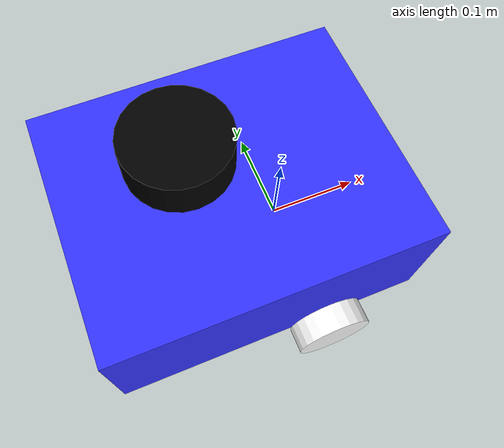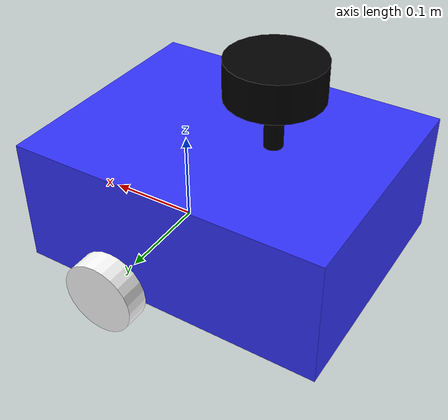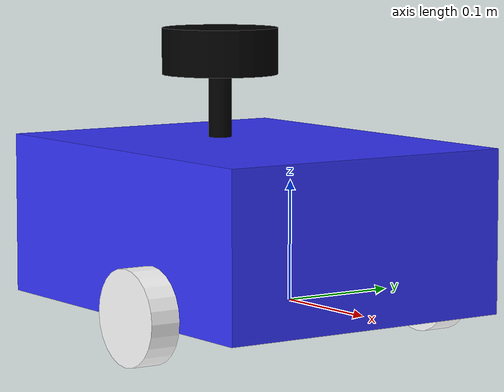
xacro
<?xml version="1.0"?>
<robot xmlns:xacro="http://www.ros.org/wiki/xacro" name="amr">
    <xacro:arg name="robot_name" default="amr_x"/>
    <xacro:arg name="use_ros2_control" default="false"/>
    <xacro:arg name="sim_mode" default="false"/>

    <xacro:include filename="robot_core.xacro" />
    <xacro:robot_core robot_name="$(arg robot_name)"/>

    <xacro:include filename="gazebo_control.xacro" />
    <xacro:gazebo_ns robot_name="$(arg robot_name)"/>

    <xacro:include filename="lidar.xacro" />

    <xacro:lidar robot_name="$(arg robot_name)"/>

</robot>

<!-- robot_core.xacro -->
<robot xmlns:xacro="http://www.ros.org/wiki/xacro" >
    <xacro:arg name="robot_name" default="amr_x"/>

    <xacro:include filename="inertial_macros.xacro"/>
    <xacro:macro name="robot_core" params="robot_name">

        <xacro:property name="chassis_length" value="0.335"/>
        <xacro:property name="chassis_width" value="0.265"/>
        <xacro:property name="chassis_height" value="0.138"/>
        <xacro:property name="chassis_mass" value="1.0"/>
        <xacro:property name="wheel_radius" value="0.040"/>
        <xacro:property name="wheel_thickness" value="0.026"/>
        <xacro:property name="wheel_mass" value="0.05"/>
        <xacro:property name="wheel_offset_x" value="0.226"/>
        <xacro:property name="wheel_offset_y" value="0.1485"/>
        <xacro:property name="wheel_offset_z" value="0.01"/>
        <xacro:property name="caster_wheel_radius" value="0.015"/>
        <xacro:property name="caster_wheel_mass" value="0.01"/>
        <xacro:property name="caster_wheel_offset_x" value="0.075"/>
        <xacro:property name="caster_wheel_offset_z" value="${wheel_offset_z - wheel_radius + caster_wheel_radius}"/>

        <material name="white">
            <color rgba="1 1 1 1" />
        </material>

        <material name="orange">
            <color rgba="1 0.3 0.1 1"/>
        </material>

        <material name="blue">
            <color rgba="0.2 0.2 1 1"/>
        </material>

        <material name="black">
            <color rgba="0 0 0 1"/>
        </material>

        <material name="red">
            <color rgba="1 0 0 1"/>
        </material>

        <!-- BASE LINK -->

        <link name="base_link">

        </link>

        <!-- BASE_FOOTPRINT LINK -->

        <joint name="base_footprint_joint" type="fixed">
            <parent link="base_link"/>
            <child link="base_footprint"/>
            <origin xyz="0 0 0" rpy="0 0 0"/>
        </joint>

        <link name="base_footprint">
        </link>

        <!-- CHASSIS LINK -->

        <joint name="chassis_joint" type="fixed">
            <parent link="base_link"/>
            <child link="chassis"/>
            <origin xyz="${-wheel_offset_x} 0 ${-wheel_offset_z}"/>
        </joint>

        <link name="chassis">
            <visual>
                <origin xyz="${chassis_length/2} 0 ${chassis_height/2}"/>
                <geometry>
                    <box size="${chassis_length} ${chassis_width} ${chassis_height}"/>
                </geometry>
                <material name="blue"/>
            </visual>
            <collision>
                <origin xyz="${chassis_length/2} 0 ${chassis_height/2}"/>
                <geometry>
                    <box size="${chassis_length} ${chassis_width} ${chassis_height}"/>
                </geometry>
            </collision>
            <xacro:inertial_box mass="0.5" x="${chassis_length}" y="${chassis_width}" z="${chassis_height}">
                <origin xyz="${chassis_length/2} 0 ${chassis_height/2}" rpy="0 0 0"/>
            </xacro:inertial_box>
        </link>

        <gazebo reference="chassis">
            <material>Gazebo/Blue</material>
        </gazebo>

        <!-- LEFT WHEEL LINK -->

        <joint name="left_wheel_joint" type="continuous">
            <parent link="base_link"/>
            <child link="left_wheel"/>
            <origin xyz="0 ${wheel_offset_y} 0" rpy="-${pi/2} 0 0" />
            <axis xyz="0 0 1"/>
        </joint>

        <link name="left_wheel">
            <visual>
                <geometry>
                    <cylinder radius="${wheel_radius}" length="${wheel_thickness}"/>
                </geometry>
                <material name="white"/>
            </visual>
            <collision>
                <geometry>
                    <sphere radius="${wheel_radius}"/>
                </geometry>
            </collision>
            <xacro:inertial_cylinder mass="${wheel_mass}" length="${wheel_thickness}" radius="${wheel_radius}">
                <origin xyz="0 0 0" rpy="0 0 0"/>
            </xacro:inertial_cylinder>
        </link>

        <gazebo reference="left_wheel">
            <material>Gazebo/White</material>
        </gazebo>

        <!-- RIGHT WHEEL LINK -->

        <joint name="right_wheel_joint" type="continuous">
            <parent link="base_link"/>
            <child link="right_wheel"/>
            <origin xyz="0 ${-wheel_offset_y} 0" rpy="${pi/2} 0 0" />
            <axis xyz="0 0 -1"/>
        </joint>

        <link name="right_wheel">
            <visual>
                <geometry>
                    <cylinder radius="${wheel_radius}" length="${wheel_thickness}"/>
                </geometry>
                <material name="white"/>
            </visual>
            <collision>
                <geometry>
                    <sphere radius="${wheel_radius}"/>
                </geometry>
            </collision>
            <xacro:inertial_cylinder mass="${wheel_mass}" length="${wheel_thickness}" radius="${wheel_radius}">
                <origin xyz="0 0 0" rpy="0 0 0"/>
            </xacro:inertial_cylinder>
        </link>

        <gazebo reference="right_wheel">
            <material>Gazebo/White</material>
        </gazebo>

        <!-- CASTER WHEEL LINK -->

        <joint name="caster_wheel_joint" type="fixed">
            <parent link="chassis"/>
            <child link="caster_wheel"/>
            <origin xyz="${caster_wheel_offset_x} 0 ${caster_wheel_offset_z}"/>
        </joint>

        <link name="caster_wheel">
            <visual>
                <geometry>
                    <sphere radius="${caster_wheel_radius}"/>
                </geometry>
                <material name="black"/>
            </visual>
            <collision>
                <geometry>
                    <sphere radius="${caster_wheel_radius}"/>
                </geometry>
            </collision>
            <xacro:inertial_sphere mass="${caster_wheel_mass}" radius="${caster_wheel_radius}">
                <origin xyz="0 0 0" rpy="0 0 0"/>
            </xacro:inertial_sphere>
        </link>

        <gazebo reference="caster_wheel">
            <material>Gazebo/Black</material>
            <mu1 value="0.001"/>
            <mu2 value="0.001"/>
        </gazebo>

    </xacro:macro> <!-- Closing the macro tag -->

</robot>

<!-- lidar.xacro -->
<robot xmlns:xacro="http://www.ros.org/wiki/xacro" >
    <xacro:macro name="lidar" params="robot_name">

        <joint name="laser_joint" type="fixed">
            <parent link="chassis"/>
            <child link="laser_frame"/>
            <origin xyz="0.122 0 0.212" rpy="0 0 0"/>
        </joint>

        <link name="laser_frame">
            <visual>
                <geometry>
                    <cylinder radius="0.05" length="0.04"/>
                </geometry>
                <material name="black"/>
            </visual>
            <visual>
                <origin xyz="0 0 -0.05"/>
                <geometry>
                    <cylinder radius="0.01" length="0.1"/>
                </geometry>
                <material name="black"/>
            </visual>
            <collision>
                <geometry>
                    <cylinder radius="0.05" length="0.04"/>
                </geometry>
            </collision>
            <xacro:inertial_cylinder mass="0.1" length="0.04" radius="0.05">
                <origin xyz="0 0 0" rpy="0 0 0"/>
            </xacro:inertial_cylinder>
        </link>

        <gazebo reference="laser_frame">
            <material>Gazebo/Black</material>

            <sensor name="laser" type="ray">
                <pose> 0 0 0 0 0 0 </pose>
                <visualize>false</visualize>
                <update_rate>10</update_rate>
                <ray>
                    <scan>
                        <horizontal>
                            <samples>360</samples>
                            <min_angle>-3.14</min_angle>
                            <max_angle>3.14</max_angle>
                        </horizontal>
                    </scan>
                    <range>
                        <min>0.3</min>
                        <max>12</max>
                    </range>
                </ray>
                <plugin name="laser_controller" filename="libgazebo_ros_ray_sensor.so">
                    <ros>
                        <namespace>${robot_name}</namespace>
                        <argument>~/out:=scan</argument>
                    </ros>
                    <output_type>sensor_msgs/LaserScan</output_type>
                    <frame_name>${robot_name}/laser_frame</frame_name>
                </plugin>
            </sensor>
        </gazebo>

    </xacro:macro> <!-- This is the missing closing tag -->

</robot>
